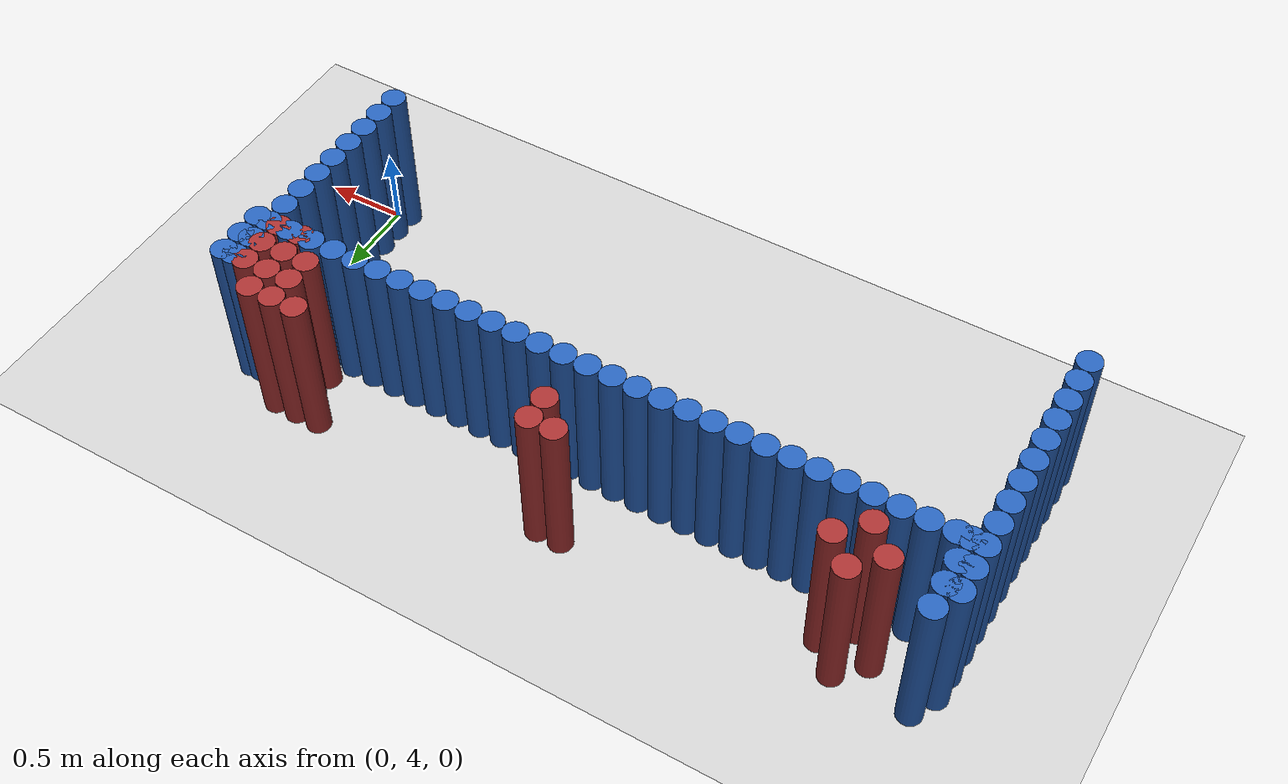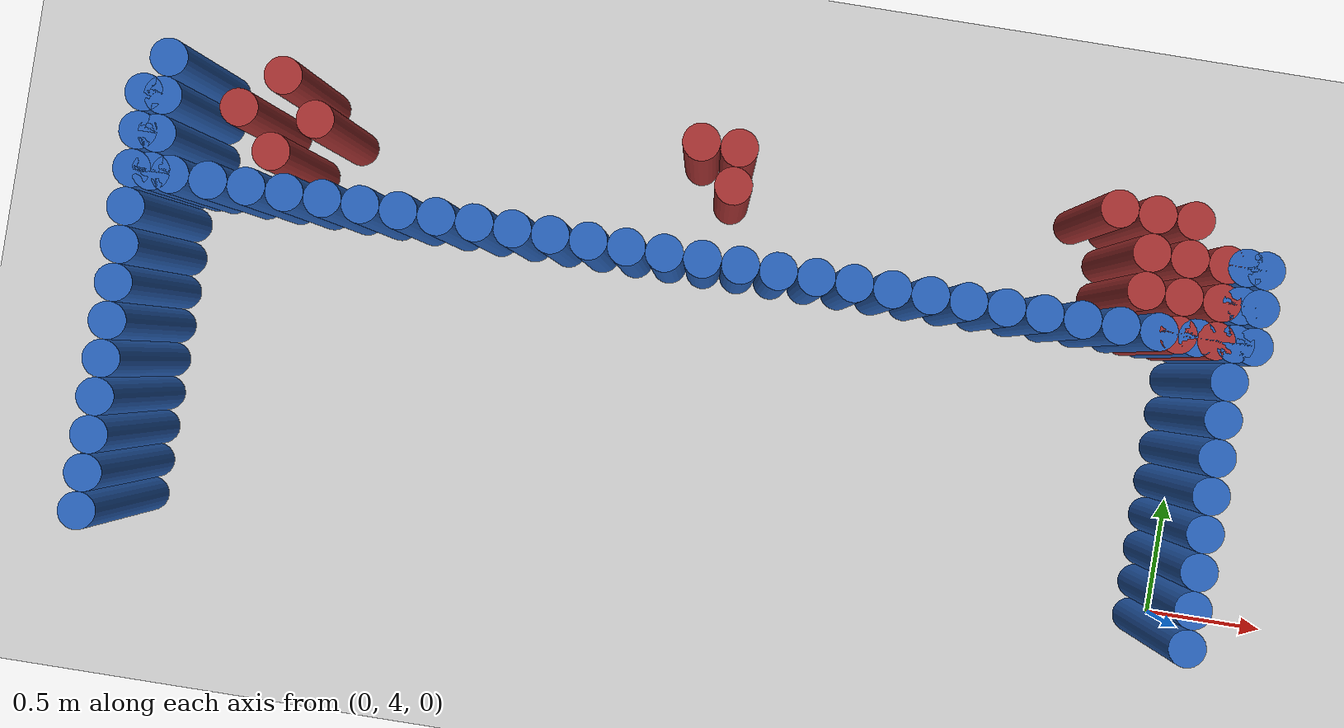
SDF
<sdf version="1.6">
 <world name="barn_world">
  <model name="ground_plane">
   <static>1</static>
   <link name="link">
    <collision name="collision">
     <geometry><plane><normal>0 0 1</normal><size>100 100</size></plane></geometry>
    </collision>
    <visual name="visual">
     <geometry><plane><normal>0 0 1</normal><size>100 100</size></plane></geometry>
     <material>
      <script><uri>file://media/materials/scripts/gazebo.material</uri><name>Gazebo/Grey</name></script>
     </material>
    </visual>
   </link>
  </model>
  <model name="unit_cylinder_79">
   <static>1</static>
   <pose>-4.4250 3.8250 0.5 0 0 0</pose>
   <link name="link">
    <collision name="collision">
     <geometry><cylinder><radius>0.075</radius><length>1</length></cylinder></geometry>
    </collision>
    <visual name="visual">
     <geometry><cylinder><radius>0.075</radius><length>1</length></cylinder></geometry>
     <material><ambient>0.152 0.379 0.72 1</ambient><diffuse>0.152 0.379 0.72 1</diffuse></material>
    </visual>
   </link>
  </model>
  <model name="unit_cylinder_80">
   <static>1</static>
   <pose>-0.0750 3.9750 0.5 0 0 0</pose>
   <link name="link">
    <collision name="collision">
     <geometry><cylinder><radius>0.075</radius><length>1</length></cylinder></geometry>
    </collision>
    <visual name="visual">
     <geometry><cylinder><radius>0.075</radius><length>1</length></cylinder></geometry>
     <material><ambient>0.152 0.379 0.72 1</ambient><diffuse>0.152 0.379 0.72 1</diffuse></material>
    </visual>
   </link>
  </model>
  <model name="unit_cylinder_81">
   <static>1</static>
   <pose>-4.4250 3.9750 0.5 0 0 0</pose>
   <link name="link">
    <collision name="collision">
     <geometry><cylinder><radius>0.075</radius><length>1</length></cylinder></geometry>
    </collision>
    <visual name="visual">
     <geometry><cylinder><radius>0.075</radius><length>1</length></cylinder></geometry>
     <material><ambient>0.152 0.379 0.72 1</ambient><diffuse>0.152 0.379 0.72 1</diffuse></material>
    </visual>
   </link>
  </model>
  <model name="unit_cylinder_82">
   <static>1</static>
   <pose>-0.0750 4.1250 0.5 0 0 0</pose>
   <link name="link">
    <collision name="collision">
     <geometry><cylinder><radius>0.075</radius><length>1</length></cylinder></geometry>
    </collision>
    <visual name="visual">
     <geometry><cylinder><radius>0.075</radius><length>1</length></cylinder></geometry>
     <material><ambient>0.152 0.379 0.72 1</ambient><diffuse>0.152 0.379 0.72 1</diffuse></material>
    </visual>
   </link>
  </model>
  <model name="unit_cylinder_83">
   <static>1</static>
   <pose>-4.4250 4.1250 0.5 0 0 0</pose>
   <link name="link">
    <collision name="collision">
     <geometry><cylinder><radius>0.075</radius><length>1</length></cylinder></geometry>
    </collision>
    <visual name="visual">
     <geometry><cylinder><radius>0.075</radius><length>1</length></cylinder></geometry>
     <material><ambient>0.152 0.379 0.72 1</ambient><diffuse>0.152 0.379 0.72 1</diffuse></material>
    </visual>
   </link>
  </model>
  <model name="unit_cylinder_84">
   <static>1</static>
   <pose>-0.0750 4.2750 0.5 0 0 0</pose>
   <link name="link">
    <collision name="collision">
     <geometry><cylinder><radius>0.075</radius><length>1</length></cylinder></geometry>
    </collision>
    <visual name="visual">
     <geometry><cylinder><radius>0.075</radius><length>1</length></cylinder></geometry>
     <material><ambient>0.152 0.379 0.72 1</ambient><diffuse>0.152 0.379 0.72 1</diffuse></material>
    </visual>
   </link>
  </model>
  <model name="unit_cylinder_85">
   <static>1</static>
   <pose>-4.4250 4.2750 0.5 0 0 0</pose>
   <link name="link">
    <collision name="collision">
     <geometry><cylinder><radius>0.075</radius><length>1</length></cylinder></geometry>
    </collision>
    <visual name="visual">
     <geometry><cylinder><radius>0.075</radius><length>1</length></cylinder></geometry>
     <material><ambient>0.152 0.379 0.72 1</ambient><diffuse>0.152 0.379 0.72 1</diffuse></material>
    </visual>
   </link>
  </model>
  <model name="unit_cylinder_86">
   <static>1</static>
   <pose>-0.0750 4.4250 0.5 0 0 0</pose>
   <link name="link">
    <collision name="collision">
     <geometry><cylinder><radius>0.075</radius><length>1</length></cylinder></geometry>
    </collision>
    <visual name="visual">
     <geometry><cylinder><radius>0.075</radius><length>1</length></cylinder></geometry>
     <material><ambient>0.152 0.379 0.72 1</ambient><diffuse>0.152 0.379 0.72 1</diffuse></material>
    </visual>
   </link>
  </model>
  <model name="unit_cylinder_87">
   <static>1</static>
   <pose>-4.4250 4.4250 0.5 0 0 0</pose>
   <link name="link">
    <collision name="collision">
     <geometry><cylinder><radius>0.075</radius><length>1</length></cylinder></geometry>
    </collision>
    <visual name="visual">
     <geometry><cylinder><radius>0.075</radius><length>1</length></cylinder></geometry>
     <material><ambient>0.152 0.379 0.72 1</ambient><diffuse>0.152 0.379 0.72 1</diffuse></material>
    </visual>
   </link>
  </model>
  <model name="unit_cylinder_88">
   <static>1</static>
   <pose>-0.0750 4.5750 0.5 0 0 0</pose>
   <link name="link">
    <collision name="collision">
     <geometry><cylinder><radius>0.075</radius><length>1</length></cylinder></geometry>
    </collision>
    <visual name="visual">
     <geometry><cylinder><radius>0.075</radius><length>1</length></cylinder></geometry>
     <material><ambient>0.152 0.379 0.72 1</ambient><diffuse>0.152 0.379 0.72 1</diffuse></material>
    </visual>
   </link>
  </model>
  <model name="unit_cylinder_89">
   <static>1</static>
   <pose>-4.4250 4.5750 0.5 0 0 0</pose>
   <link name="link">
    <collision name="collision">
     <geometry><cylinder><radius>0.075</radius><length>1</length></cylinder></geometry>
    </collision>
    <visual name="visual">
     <geometry><cylinder><radius>0.075</radius><length>1</length></cylinder></geometry>
     <material><ambient>0.152 0.379 0.72 1</ambient><diffuse>0.152 0.379 0.72 1</diffuse></material>
    </visual>
   </link>
  </model>
  <model name="unit_cylinder_90">
   <static>1</static>
   <pose>-0.0750 4.7250 0.5 0 0 0</pose>
   <link name="link">
    <collision name="collision">
     <geometry><cylinder><radius>0.075</radius><length>1</length></cylinder></geometry>
    </collision>
    <visual name="visual">
     <geometry><cylinder><radius>0.075</radius><length>1</length></cylinder></geometry>
     <material><ambient>0.152 0.379 0.72 1</ambient><diffuse>0.152 0.379 0.72 1</diffuse></material>
    </visual>
   </link>
  </model>
  <model name="unit_cylinder_91">
   <static>1</static>
   <pose>-4.4250 4.7250 0.5 0 0 0</pose>
   <link name="link">
    <collision name="collision">
     <geometry><cylinder><radius>0.075</radius><length>1</length></cylinder></geometry>
    </collision>
    <visual name="visual">
     <geometry><cylinder><radius>0.075</radius><length>1</length></cylinder></geometry>
     <material><ambient>0.152 0.379 0.72 1</ambient><diffuse>0.152 0.379 0.72 1</diffuse></material>
    </visual>
   </link>
  </model>
  <model name="unit_cylinder_92">
   <static>1</static>
   <pose>-0.0750 4.8750 0.5 0 0 0</pose>
   <link name="link">
    <collision name="collision">
     <geometry><cylinder><radius>0.075</radius><length>1</length></cylinder></geometry>
    </collision>
    <visual name="visual">
     <geometry><cylinder><radius>0.075</radius><length>1</length></cylinder></geometry>
     <material><ambient>0.152 0.379 0.72 1</ambient><diffuse>0.152 0.379 0.72 1</diffuse></material>
    </visual>
   </link>
  </model>
  <model name="unit_cylinder_93">
   <static>1</static>
   <pose>-4.4250 4.8750 0.5 0 0 0</pose>
   <link name="link">
    <collision name="collision">
     <geometry><cylinder><radius>0.075</radius><length>1</length></cylinder></geometry>
    </collision>
    <visual name="visual">
     <geometry><cylinder><radius>0.075</radius><length>1</length></cylinder></geometry>
     <material><ambient>0.152 0.379 0.72 1</ambient><diffuse>0.152 0.379 0.72 1</diffuse></material>
    </visual>
   </link>
  </model>
  <model name="unit_cylinder_94">
   <static>1</static>
   <pose>-0.0750 5.0250 0.5 0 0 0</pose>
   <link name="link">
    <collision name="collision">
     <geometry><cylinder><radius>0.075</radius><length>1</length></cylinder></geometry>
    </collision>
    <visual name="visual">
     <geometry><cylinder><radius>0.075</radius><length>1</length></cylinder></geometry>
     <material><ambient>0.152 0.379 0.72 1</ambient><diffuse>0.152 0.379 0.72 1</diffuse></material>
    </visual>
   </link>
  </model>
  <model name="unit_cylinder_95">
   <static>1</static>
   <pose>-4.4250 5.0250 0.5 0 0 0</pose>
   <link name="link">
    <collision name="collision">
     <geometry><cylinder><radius>0.075</radius><length>1</length></cylinder></geometry>
    </collision>
    <visual name="visual">
     <geometry><cylinder><radius>0.075</radius><length>1</length></cylinder></geometry>
     <material><ambient>0.152 0.379 0.72 1</ambient><diffuse>0.152 0.379 0.72 1</diffuse></material>
    </visual>
   </link>
  </model>
  <model name="unit_cylinder_96">
   <static>1</static>
   <pose>-0.0750 5.1750 0.5 0 0 0</pose>
   <link name="link">
    <collision name="collision">
     <geometry><cylinder><radius>0.075</radius><length>1</length></cylinder></geometry>
    </collision>
    <visual name="visual">
     <geometry><cylinder><radius>0.075</radius><length>1</length></cylinder></geometry>
     <material><ambient>0.152 0.379 0.72 1</ambient><diffuse>0.152 0.379 0.72 1</diffuse></material>
    </visual>
   </link>
  </model>
  <model name="unit_cylinder_97">
   <static>1</static>
   <pose>-0.2250 5.1750 0.5 0 0 0</pose>
   <link name="link">
    <collision name="collision">
     <geometry><cylinder><radius>0.075</radius><length>1</length></cylinder></geometry>
    </collision>
    <visual name="visual">
     <geometry><cylinder><radius>0.075</radius><length>1</length></cylinder></geometry>
     <material><ambient>0.152 0.379 0.72 1</ambient><diffuse>0.152 0.379 0.72 1</diffuse></material>
    </visual>
   </link>
  </model>
  <model name="unit_cylinder_98">
   <static>1</static>
   <pose>-0.3750 5.1750 0.5 0 0 0</pose>
   <link name="link">
    <collision name="collision">
     <geometry><cylinder><radius>0.075</radius><length>1</length></cylinder></geometry>
    </collision>
    <visual name="visual">
     <geometry><cylinder><radius>0.075</radius><length>1</length></cylinder></geometry>
     <material><ambient>0.152 0.379 0.72 1</ambient><diffuse>0.152 0.379 0.72 1</diffuse></material>
    </visual>
   </link>
  </model>
  <model name="unit_cylinder_99">
   <static>1</static>
   <pose>-0.5250 5.1750 0.5 0 0 0</pose>
   <link name="link">
    <collision name="collision">
     <geometry><cylinder><radius>0.075</radius><length>1</length></cylinder></geometry>
    </collision>
    <visual name="visual">
     <geometry><cylinder><radius>0.075</radius><length>1</length></cylinder></geometry>
     <material><ambient>0.152 0.379 0.72 1</ambient><diffuse>0.152 0.379 0.72 1</diffuse></material>
    </visual>
   </link>
  </model>
  <model name="unit_cylinder_100">
   <static>1</static>
   <pose>-0.6750 5.1750 0.5 0 0 0</pose>
   <link name="link">
    <collision name="collision">
     <geometry><cylinder><radius>0.075</radius><length>1</length></cylinder></geometry>
    </collision>
    <visual name="visual">
     <geometry><cylinder><radius>0.075</radius><length>1</length></cylinder></geometry>
     <material><ambient>0.152 0.379 0.72 1</ambient><diffuse>0.152 0.379 0.72 1</diffuse></material>
    </visual>
   </link>
  </model>
  <model name="unit_cylinder_101">
   <static>1</static>
   <pose>-0.8250 5.1750 0.5 0 0 0</pose>
   <link name="link">
    <collision name="collision">
     <geometry><cylinder><radius>0.075</radius><length>1</length></cylinder></geometry>
    </collision>
    <visual name="visual">
     <geometry><cylinder><radius>0.075</radius><length>1</length></cylinder></geometry>
     <material><ambient>0.152 0.379 0.72 1</ambient><diffuse>0.152 0.379 0.72 1</diffuse></material>
    </visual>
   </link>
  </model>
  <model name="unit_cylinder_102">
   <static>1</static>
   <pose>-0.9750 5.1750 0.5 0 0 0</pose>
   <link name="link">
    <collision name="collision">
     <geometry><cylinder><radius>0.075</radius><length>1</length></cylinder></geometry>
    </collision>
    <visual name="visual">
     <geometry><cylinder><radius>0.075</radius><length>1</length></cylinder></geometry>
     <material><ambient>0.152 0.379 0.72 1</ambient><diffuse>0.152 0.379 0.72 1</diffuse></material>
    </visual>
   </link>
  </model>
  <model name="unit_cylinder_103">
   <static>1</static>
   <pose>-1.1250 5.1750 0.5 0 0 0</pose>
   <link name="link">
    <collision name="collision">
     <geometry><cylinder><radius>0.075</radius><length>1</length></cylinder></geometry>
    </collision>
    <visual name="visual">
     <geometry><cylinder><radius>0.075</radius><length>1</length></cylinder></geometry>
     <material><ambient>0.152 0.379 0.72 1</ambient><diffuse>0.152 0.379 0.72 1</diffuse></material>
    </visual>
   </link>
  </model>
  <model name="unit_cylinder_104">
   <static>1</static>
   <pose>-1.2750 5.1750 0.5 0 0 0</pose>
   <link name="link">
    <collision name="collision">
     <geometry><cylinder><radius>0.075</radius><length>1</length></cylinder></geometry>
    </collision>
    <visual name="visual">
     <geometry><cylinder><radius>0.075</radius><length>1</length></cylinder></geometry>
     <material><ambient>0.152 0.379 0.72 1</ambient><diffuse>0.152 0.379 0.72 1</diffuse></material>
    </visual>
   </link>
  </model>
  <model name="unit_cylinder_105">
   <static>1</static>
   <pose>-1.4250 5.1750 0.5 0 0 0</pose>
   <link name="link">
    <collision name="collision">
     <geometry><cylinder><radius>0.075</radius><length>1</length></cylinder></geometry>
    </collision>
    <visual name="visual">
     <geometry><cylinder><radius>0.075</radius><length>1</length></cylinder></geometry>
     <material><ambient>0.152 0.379 0.72 1</ambient><diffuse>0.152 0.379 0.72 1</diffuse></material>
    </visual>
   </link>
  </model>
  <model name="unit_cylinder_106">
   <static>1</static>
   <pose>-1.5750 5.1750 0.5 0 0 0</pose>
   <link name="link">
    <collision name="collision">
     <geometry><cylinder><radius>0.075</radius><length>1</length></cylinder></geometry>
    </collision>
    <visual name="visual">
     <geometry><cylinder><radius>0.075</radius><length>1</length></cylinder></geometry>
     <material><ambient>0.152 0.379 0.72 1</ambient><diffuse>0.152 0.379 0.72 1</diffuse></material>
    </visual>
   </link>
  </model>
  <model name="unit_cylinder_107">
   <static>1</static>
   <pose>-1.7250 5.1750 0.5 0 0 0</pose>
   <link name="link">
    <collision name="collision">
     <geometry><cylinder><radius>0.075</radius><length>1</length></cylinder></geometry>
    </collision>
    <visual name="visual">
     <geometry><cylinder><radius>0.075</radius><length>1</length></cylinder></geometry>
     <material><ambient>0.152 0.379 0.72 1</ambient><diffuse>0.152 0.379 0.72 1</diffuse></material>
    </visual>
   </link>
  </model>
  <model name="unit_cylinder_108">
   <static>1</static>
   <pose>-1.8750 5.1750 0.5 0 0 0</pose>
   <link name="link">
    <collision name="collision">
     <geometry><cylinder><radius>0.075</radius><length>1</length></cylinder></geometry>
    </collision>
    <visual name="visual">
     <geometry><cylinder><radius>0.075</radius><length>1</length></cylinder></geometry>
     <material><ambient>0.152 0.379 0.72 1</ambient><diffuse>0.152 0.379 0.72 1</diffuse></material>
    </visual>
   </link>
  </model>
  <model name="unit_cylinder_109">
   <static>1</static>
   <pose>-2.0250 5.1750 0.5 0 0 0</pose>
   <link name="link">
    <collision name="collision">
     <geometry><cylinder><radius>0.075</radius><length>1</length></cylinder></geometry>
    </collision>
    <visual name="visual">
     <geometry><cylinder><radius>0.075</radius><length>1</length></cylinder></geometry>
     <material><ambient>0.152 0.379 0.72 1</ambient><diffuse>0.152 0.379 0.72 1</diffuse></material>
    </visual>
   </link>
  </model>
  <model name="unit_cylinder_110">
   <static>1</static>
   <pose>-2.1750 5.1750 0.5 0 0 0</pose>
   <link name="link">
    <collision name="collision">
     <geometry><cylinder><radius>0.075</radius><length>1</length></cylinder></geometry>
    </collision>
    <visual name="visual">
     <geometry><cylinder><radius>0.075</radius><length>1</length></cylinder></geometry>
     <material><ambient>0.152 0.379 0.72 1</ambient><diffuse>0.152 0.379 0.72 1</diffuse></material>
    </visual>
   </link>
  </model>
  <model name="unit_cylinder_111">
   <static>1</static>
   <pose>-2.3250 5.1750 0.5 0 0 0</pose>
   <link name="link">
    <collision name="collision">
     <geometry><cylinder><radius>0.075</radius><length>1</length></cylinder></geometry>
    </collision>
    <visual name="visual">
     <geometry><cylinder><radius>0.075</radius><length>1</length></cylinder></geometry>
     <material><ambient>0.152 0.379 0.72 1</ambient><diffuse>0.152 0.379 0.72 1</diffuse></material>
    </visual>
   </link>
  </model>
  <model name="unit_cylinder_112">
   <static>1</static>
   <pose>-2.4750 5.1750 0.5 0 0 0</pose>
   <link name="link">
    <collision name="collision">
     <geometry><cylinder><radius>0.075</radius><length>1</length></cylinder></geometry>
    </collision>
    <visual name="visual">
     <geometry><cylinder><radius>0.075</radius><length>1</length></cylinder></geometry>
     <material><ambient>0.152 0.379 0.72 1</ambient><diffuse>0.152 0.379 0.72 1</diffuse></material>
    </visual>
   </link>
  </model>
  <model name="unit_cylinder_113">
   <static>1</static>
   <pose>-2.6250 5.1750 0.5 0 0 0</pose>
   <link name="link">
    <collision name="collision">
     <geometry><cylinder><radius>0.075</radius><length>1</length></cylinder></geometry>
    </collision>
    <visual name="visual">
     <geometry><cylinder><radius>0.075</radius><length>1</length></cylinder></geometry>
     <material><ambient>0.152 0.379 0.72 1</ambient><diffuse>0.152 0.379 0.72 1</diffuse></material>
    </visual>
   </link>
  </model>
  <model name="unit_cylinder_114">
   <static>1</static>
   <pose>-2.7750 5.1750 0.5 0 0 0</pose>
   <link name="link">
    <collision name="collision">
     <geometry><cylinder><radius>0.075</radius><length>1</length></cylinder></geometry>
    </collision>
    <visual name="visual">
     <geometry><cylinder><radius>0.075</radius><length>1</length></cylinder></geometry>
     <material><ambient>0.152 0.379 0.72 1</ambient><diffuse>0.152 0.379 0.72 1</diffuse></material>
    </visual>
   </link>
  </model>
  <model name="unit_cylinder_115">
   <static>1</static>
   <pose>-2.9250 5.1750 0.5 0 0 0</pose>
   <link name="link">
    <collision name="collision">
     <geometry><cylinder><radius>0.075</radius><length>1</length></cylinder></geometry>
    </collision>
    <visual name="visual">
     <geometry><cylinder><radius>0.075</radius><length>1</length></cylinder></geometry>
     <material><ambient>0.152 0.379 0.72 1</ambient><diffuse>0.152 0.379 0.72 1</diffuse></material>
    </visual>
   </link>
  </model>
  <model name="unit_cylinder_116">
   <static>1</static>
   <pose>-3.0750 5.1750 0.5 0 0 0</pose>
   <link name="link">
    <collision name="collision">
     <geometry><cylinder><radius>0.075</radius><length>1</length></cylinder></geometry>
    </collision>
    <visual name="visual">
     <geometry><cylinder><radius>0.075</radius><length>1</length></cylinder></geometry>
     <material><ambient>0.152 0.379 0.72 1</ambient><diffuse>0.152 0.379 0.72 1</diffuse></material>
    </visual>
   </link>
  </model>
  <model name="unit_cylinder_117">
   <static>1</static>
   <pose>-3.2250 5.1750 0.5 0 0 0</pose>
   <link name="link">
    <collision name="collision">
     <geometry><cylinder><radius>0.075</radius><length>1</length></cylinder></geometry>
    </collision>
    <visual name="visual">
     <geometry><cylinder><radius>0.075</radius><length>1</length></cylinder></geometry>
     <material><ambient>0.152 0.379 0.72 1</ambient><diffuse>0.152 0.379 0.72 1</diffuse></material>
    </visual>
   </link>
  </model>
  <model name="unit_cylinder_118">
   <static>1</static>
   <pose>-3.3750 5.1750 0.5 0 0 0</pose>
   <link name="link">
    <collision name="collision">
     <geometry><cylinder><radius>0.075</radius><length>1</length></cylinder></geometry>
    </collision>
    <visual name="visual">
     <geometry><cylinder><radius>0.075</radius><length>1</length></cylinder></geometry>
     <material><ambient>0.152 0.379 0.72 1</ambient><diffuse>0.152 0.379 0.72 1</diffuse></material>
    </visual>
   </link>
  </model>
  <model name="unit_cylinder_119">
   <static>1</static>
   <pose>-3.5250 5.1750 0.5 0 0 0</pose>
   <link name="link">
    <collision name="collision">
     <geometry><cylinder><radius>0.075</radius><length>1</length></cylinder></geometry>
    </collision>
    <visual name="visual">
     <geometry><cylinder><radius>0.075</radius><length>1</length></cylinder></geometry>
     <material><ambient>0.152 0.379 0.72 1</ambient><diffuse>0.152 0.379 0.72 1</diffuse></material>
    </visual>
   </link>
  </model>
  <model name="unit_cylinder_120">
   <static>1</static>
   <pose>-3.6750 5.1750 0.5 0 0 0</pose>
   <link name="link">
    <collision name="collision">
     <geometry><cylinder><radius>0.075</radius><length>1</length></cylinder></geometry>
    </collision>
    <visual name="visual">
     <geometry><cylinder><radius>0.075</radius><length>1</length></cylinder></geometry>
     <material><ambient>0.152 0.379 0.72 1</ambient><diffuse>0.152 0.379 0.72 1</diffuse></material>
    </visual>
   </link>
  </model>
  <model name="unit_cylinder_121">
   <static>1</static>
   <pose>-3.8250 5.1750 0.5 0 0 0</pose>
   <link name="link">
    <collision name="collision">
     <geometry><cylinder><radius>0.075</radius><length>1</length></cylinder></geometry>
    </collision>
    <visual name="visual">
     <geometry><cylinder><radius>0.075</radius><length>1</length></cylinder></geometry>
     <material><ambient>0.152 0.379 0.72 1</ambient><diffuse>0.152 0.379 0.72 1</diffuse></material>
    </visual>
   </link>
  </model>
  <model name="unit_cylinder_122">
   <static>1</static>
   <pose>-3.9750 5.1750 0.5 0 0 0</pose>
   <link name="link">
    <collision name="collision">
     <geometry><cylinder><radius>0.075</radius><length>1</length></cylinder></geometry>
    </collision>
    <visual name="visual">
     <geometry><cylinder><radius>0.075</radius><length>1</length></cylinder></geometry>
     <material><ambient>0.152 0.379 0.72 1</ambient><diffuse>0.152 0.379 0.72 1</diffuse></material>
    </visual>
   </link>
  </model>
  <model name="unit_cylinder_123">
   <static>1</static>
   <pose>-4.1250 5.1750 0.5 0 0 0</pose>
   <link name="link">
    <collision name="collision">
     <geometry><cylinder><radius>0.075</radius><length>1</length></cylinder></geometry>
    </collision>
    <visual name="visual">
     <geometry><cylinder><radius>0.075</radius><length>1</length></cylinder></geometry>
     <material><ambient>0.152 0.379 0.72 1</ambient><diffuse>0.152 0.379 0.72 1</diffuse></material>
    </visual>
   </link>
  </model>
  <model name="unit_cylinder_124">
   <static>1</static>
   <pose>-4.2750 5.1750 0.5 0 0 0</pose>
   <link name="link">
    <collision name="collision">
     <geometry><cylinder><radius>0.075</radius><length>1</length></cylinder></geometry>
    </collision>
    <visual name="visual">
     <geometry><cylinder><radius>0.075</radius><length>1</length></cylinder></geometry>
     <material><ambient>0.152 0.379 0.72 1</ambient><diffuse>0.152 0.379 0.72 1</diffuse></material>
    </visual>
   </link>
  </model>
  <model name="unit_cylinder_125">
   <static>1</static>
   <pose>-4.4250 5.1750 0.5 0 0 0</pose>
   <link name="link">
    <collision name="collision">
     <geometry><cylinder><radius>0.075</radius><length>1</length></cylinder></geometry>
    </collision>
    <visual name="visual">
     <geometry><cylinder><radius>0.075</radius><length>1</length></cylinder></geometry>
     <material><ambient>0.152 0.379 0.72 1</ambient><diffuse>0.152 0.379 0.72 1</diffuse></material>
    </visual>
   </link>
  </model>
  <model name="unit_cylinder_126">
   <static>1</static>
   <pose>-4.3500 5.1750 0.5 0 0 0</pose>
   <link name="link">
    <collision name="collision">
     <geometry><cylinder><radius>0.075</radius><length>1</length></cylinder></geometry>
    </collision>
    <visual name="visual">
     <geometry><cylinder><radius>0.075</radius><length>1</length></cylinder></geometry>
     <material><ambient>0.152 0.379 0.72 1</ambient><diffuse>0.152 0.379 0.72 1</diffuse></material>
    </visual>
   </link>
  </model>
  <model name="unit_cylinder_127">
   <static>1</static>
   <pose>-4.3500 5.3250 0.5 0 0 0</pose>
   <link name="link">
    <collision name="collision">
     <geometry><cylinder><radius>0.075</radius><length>1</length></cylinder></geometry>
    </collision>
    <visual name="visual">
     <geometry><cylinder><radius>0.075</radius><length>1</length></cylinder></geometry>
     <material><ambient>0.152 0.379 0.72 1</ambient><diffuse>0.152 0.379 0.72 1</diffuse></material>
    </visual>
   </link>
  </model>
  <model name="unit_cylinder_128">
   <static>1</static>
   <pose>-4.3500 5.4750 0.5 0 0 0</pose>
   <link name="link">
    <collision name="collision">
     <geometry><cylinder><radius>0.075</radius><length>1</length></cylinder></geometry>
    </collision>
    <visual name="visual">
     <geometry><cylinder><radius>0.075</radius><length>1</length></cylinder></geometry>
     <material><ambient>0.152 0.379 0.72 1</ambient><diffuse>0.152 0.379 0.72 1</diffuse></material>
    </visual>
   </link>
  </model>
  <model name="unit_cylinder_129">
   <static>1</static>
   <pose>-4.3500 5.6250 0.5 0 0 0</pose>
   <link name="link">
    <collision name="collision">
     <geometry><cylinder><radius>0.075</radius><length>1</length></cylinder></geometry>
    </collision>
    <visual name="visual">
     <geometry><cylinder><radius>0.075</radius><length>1</length></cylinder></geometry>
     <material><ambient>0.152 0.379 0.72 1</ambient><diffuse>0.152 0.379 0.72 1</diffuse></material>
    </visual>
   </link>
  </model>
  <model name="unit_cylinder_169">
   <static>1</static>
   <pose>-4.0500 5.4750 0.5 0 0 0</pose>
   <link name="link">
    <collision name="collision">
     <geometry><cylinder><radius>0.075</radius><length>1</length></cylinder></geometry>
    </collision>
    <visual name="visual">
     <geometry><cylinder><radius>0.075</radius><length>1</length></cylinder></geometry>
     <material><ambient>0.648 0.192 0.192 1</ambient><diffuse>0.648 0.192 0.192 1</diffuse></material>
    </visual>
   </link>
  </model>
  <model name="unit_cylinder_176">
   <static>1</static>
   <pose>-3.9000 5.3250 0.5 0 0 0</pose>
   <link name="link">
    <collision name="collision">
     <geometry><cylinder><radius>0.075</radius><length>1</length></cylinder></geometry>
    </collision>
    <visual name="visual">
     <geometry><cylinder><radius>0.075</radius><length>1</length></cylinder></geometry>
     <material><ambient>0.648 0.192 0.192 1</ambient><diffuse>0.648 0.192 0.192 1</diffuse></material>
    </visual>
   </link>
  </model>
  <model name="unit_cylinder_177">
   <static>1</static>
   <pose>-3.9000 5.6250 0.5 0 0 0</pose>
   <link name="link">
    <collision name="collision">
     <geometry><cylinder><radius>0.075</radius><length>1</length></cylinder></geometry>
    </collision>
    <visual name="visual">
     <geometry><cylinder><radius>0.075</radius><length>1</length></cylinder></geometry>
     <material><ambient>0.648 0.192 0.192 1</ambient><diffuse>0.648 0.192 0.192 1</diffuse></material>
    </visual>
   </link>
  </model>
  <model name="unit_cylinder_183">
   <static>1</static>
   <pose>-3.7500 5.4750 0.5 0 0 0</pose>
   <link name="link">
    <collision name="collision">
     <geometry><cylinder><radius>0.075</radius><length>1</length></cylinder></geometry>
    </collision>
    <visual name="visual">
     <geometry><cylinder><radius>0.075</radius><length>1</length></cylinder></geometry>
     <material><ambient>0.648 0.192 0.192 1</ambient><diffuse>0.648 0.192 0.192 1</diffuse></material>
    </visual>
   </link>
  </model>
  <model name="unit_cylinder_203">
   <static>1</static>
   <pose>-2.2500 5.6250 0.5 0 0 0</pose>
   <link name="link">
    <collision name="collision">
     <geometry><cylinder><radius>0.075</radius><length>1</length></cylinder></geometry>
    </collision>
    <visual name="visual">
     <geometry><cylinder><radius>0.075</radius><length>1</length></cylinder></geometry>
     <material><ambient>0.648 0.192 0.192 1</ambient><diffuse>0.648 0.192 0.192 1</diffuse></material>
    </visual>
   </link>
  </model>
  <model name="unit_cylinder_207">
   <static>1</static>
   <pose>-2.1000 5.4750 0.5 0 0 0</pose>
   <link name="link">
    <collision name="collision">
     <geometry><cylinder><radius>0.075</radius><length>1</length></cylinder></geometry>
    </collision>
    <visual name="visual">
     <geometry><cylinder><radius>0.075</radius><length>1</length></cylinder></geometry>
     <material><ambient>0.648 0.192 0.192 1</ambient><diffuse>0.648 0.192 0.192 1</diffuse></material>
    </visual>
   </link>
  </model>
  <model name="unit_cylinder_208">
   <static>1</static>
   <pose>-2.1000 5.6250 0.5 0 0 0</pose>
   <link name="link">
    <collision name="collision">
     <geometry><cylinder><radius>0.075</radius><length>1</length></cylinder></geometry>
    </collision>
    <visual name="visual">
     <geometry><cylinder><radius>0.075</radius><length>1</length></cylinder></geometry>
     <material><ambient>0.648 0.192 0.192 1</ambient><diffuse>0.648 0.192 0.192 1</diffuse></material>
    </visual>
   </link>
  </model>
  <model name="unit_cylinder_226">
   <static>1</static>
   <pose>-0.6000 5.6250 0.5 0 0 0</pose>
   <link name="link">
    <collision name="collision">
     <geometry><cylinder><radius>0.075</radius><length>1</length></cylinder></geometry>
    </collision>
    <visual name="visual">
     <geometry><cylinder><radius>0.075</radius><length>1</length></cylinder></geometry>
     <material><ambient>0.648 0.192 0.192 1</ambient><diffuse>0.648 0.192 0.192 1</diffuse></material>
    </visual>
   </link>
  </model>
  <model name="unit_cylinder_235">
   <static>1</static>
   <pose>-0.4500 5.3250 0.5 0 0 0</pose>
   <link name="link">
    <collision name="collision">
     <geometry><cylinder><radius>0.075</radius><length>1</length></cylinder></geometry>
    </collision>
    <visual name="visual">
     <geometry><cylinder><radius>0.075</radius><length>1</length></cylinder></geometry>
     <material><ambient>0.648 0.192 0.192 1</ambient><diffuse>0.648 0.192 0.192 1</diffuse></material>
    </visual>
   </link>
  </model>
  <model name="unit_cylinder_236">
   <static>1</static>
   <pose>-0.4500 5.4750 0.5 0 0 0</pose>
   <link name="link">
    <collision name="collision">
     <geometry><cylinder><radius>0.075</radius><length>1</length></cylinder></geometry>
    </collision>
    <visual name="visual">
     <geometry><cylinder><radius>0.075</radius><length>1</length></cylinder></geometry>
     <material><ambient>0.648 0.192 0.192 1</ambient><diffuse>0.648 0.192 0.192 1</diffuse></material>
    </visual>
   </link>
  </model>
  <model name="unit_cylinder_237">
   <static>1</static>
   <pose>-0.4500 5.6250 0.5 0 0 0</pose>
   <link name="link">
    <collision name="collision">
     <geometry><cylinder><radius>0.075</radius><length>1</length></cylinder></geometry>
    </collision>
    <visual name="visual">
     <geometry><cylinder><radius>0.075</radius><length>1</length></cylinder></geometry>
     <material><ambient>0.648 0.192 0.192 1</ambient><diffuse>0.648 0.192 0.192 1</diffuse></material>
    </visual>
   </link>
  </model>
  <model name="unit_cylinder_242">
   <static>1</static>
   <pose>-0.3000 5.1750 0.5 0 0 0</pose>
   <link name="link">
    <collision name="collision">
     <geometry><cylinder><radius>0.075</radius><length>1</length></cylinder></geometry>
    </collision>
    <visual name="visual">
     <geometry><cylinder><radius>0.075</radius><length>1</length></cylinder></geometry>
     <material><ambient>0.648 0.192 0.192 1</ambient><diffuse>0.648 0.192 0.192 1</diffuse></material>
    </visual>
   </link>
  </model>
  <model name="unit_cylinder_243">
   <static>1</static>
   <pose>-0.3000 5.3250 0.5 0 0 0</pose>
   <link name="link">
    <collision name="collision">
     <geometry><cylinder><radius>0.075</radius><length>1</length></cylinder></geometry>
    </collision>
    <visual name="visual">
     <geometry><cylinder><radius>0.075</radius><length>1</length></cylinder></geometry>
     <material><ambient>0.648 0.192 0.192 1</ambient><diffuse>0.648 0.192 0.192 1</diffuse></material>
    </visual>
   </link>
  </model>
  <model name="unit_cylinder_244">
   <static>1</static>
   <pose>-0.3000 5.4750 0.5 0 0 0</pose>
   <link name="link">
    <collision name="collision">
     <geometry><cylinder><radius>0.075</radius><length>1</length></cylinder></geometry>
    </collision>
    <visual name="visual">
     <geometry><cylinder><radius>0.075</radius><length>1</length></cylinder></geometry>
     <material><ambient>0.648 0.192 0.192 1</ambient><diffuse>0.648 0.192 0.192 1</diffuse></material>
    </visual>
   </link>
  </model>
  <model name="unit_cylinder_245">
   <static>1</static>
   <pose>-0.3000 5.6250 0.5 0 0 0</pose>
   <link name="link">
    <collision name="collision">
     <geometry><cylinder><radius>0.075</radius><length>1</length></cylinder></geometry>
    </collision>
    <visual name="visual">
     <geometry><cylinder><radius>0.075</radius><length>1</length></cylinder></geometry>
     <material><ambient>0.648 0.192 0.192 1</ambient><diffuse>0.648 0.192 0.192 1</diffuse></material>
    </visual>
   </link>
  </model>
  <model name="unit_cylinder_252">
   <static>1</static>
   <pose>-0.1500 5.1750 0.5 0 0 0</pose>
   <link name="link">
    <collision name="collision">
     <geometry><cylinder><radius>0.075</radius><length>1</length></cylinder></geometry>
    </collision>
    <visual name="visual">
     <geometry><cylinder><radius>0.075</radius><length>1</length></cylinder></geometry>
     <material><ambient>0.648 0.192 0.192 1</ambient><diffuse>0.648 0.192 0.192 1</diffuse></material>
    </visual>
   </link>
  </model>
  <model name="unit_cylinder_253">
   <static>1</static>
   <pose>-0.1500 5.3250 0.5 0 0 0</pose>
   <link name="link">
    <collision name="collision">
     <geometry><cylinder><radius>0.075</radius><length>1</length></cylinder></geometry>
    </collision>
    <visual name="visual">
     <geometry><cylinder><radius>0.075</radius><length>1</length></cylinder></geometry>
     <material><ambient>0.648 0.192 0.192 1</ambient><diffuse>0.648 0.192 0.192 1</diffuse></material>
    </visual>
   </link>
  </model>
  <model name="unit_cylinder_254">
   <static>1</static>
   <pose>-0.1500 5.4750 0.5 0 0 0</pose>
   <link name="link">
    <collision name="collision">
     <geometry><cylinder><radius>0.075</radius><length>1</length></cylinder></geometry>
    </collision>
    <visual name="visual">
     <geometry><cylinder><radius>0.075</radius><length>1</length></cylinder></geometry>
     <material><ambient>0.648 0.192 0.192 1</ambient><diffuse>0.648 0.192 0.192 1</diffuse></material>
    </visual>
   </link>
  </model>
  <model name="unit_cylinder_274">
   <static>1</static>
   <pose>0.0000 5.1750 0.5 0 0 0</pose>
   <link name="link">
    <collision name="collision">
     <geometry><cylinder><radius>0.075</radius><length>1</length></cylinder></geometry>
    </collision>
    <visual name="visual">
     <geometry><cylinder><radius>0.075</radius><length>1</length></cylinder></geometry>
     <material><ambient>0.152 0.379 0.72 1</ambient><diffuse>0.152 0.379 0.72 1</diffuse></material>
    </visual>
   </link>
  </model>
  <model name="unit_cylinder_275">
   <static>1</static>
   <pose>0.0000 5.3250 0.5 0 0 0</pose>
   <link name="link">
    <collision name="collision">
     <geometry><cylinder><radius>0.075</radius><length>1</length></cylinder></geometry>
    </collision>
    <visual name="visual">
     <geometry><cylinder><radius>0.075</radius><length>1</length></cylinder></geometry>
     <material><ambient>0.152 0.379 0.72 1</ambient><diffuse>0.152 0.379 0.72 1</diffuse></material>
    </visual>
   </link>
  </model>
  <model name="unit_cylinder_276">
   <static>1</static>
   <pose>0.0000 5.4750 0.5 0 0 0</pose>
   <link name="link">
    <collision name="collision">
     <geometry><cylinder><radius>0.075</radius><length>1</length></cylinder></geometry>
    </collision>
    <visual name="visual">
     <geometry><cylinder><radius>0.075</radius><length>1</length></cylinder></geometry>
     <material><ambient>0.152 0.379 0.72 1</ambient><diffuse>0.152 0.379 0.72 1</diffuse></material>
    </visual>
   </link>
  </model>
  <model name="unit_cylinder_334">
   <static>1</static>
   <pose>-0.0750 5.1750 0.5 0 0 0</pose>
   <link name="link">
    <collision name="collision">
     <geometry><cylinder><radius>0.075</radius><length>1</length></cylinder></geometry>
    </collision>
    <visual name="visual">
     <geometry><cylinder><radius>0.075</radius><length>1</length></cylinder></geometry>
     <material><ambient>0.152 0.379 0.72 1</ambient><diffuse>0.152 0.379 0.72 1</diffuse></material>
    </visual>
   </link>
  </model>
  <model name="unit_cylinder_335">
   <static>1</static>
   <pose>-4.4250 5.1750 0.5 0 0 0</pose>
   <link name="link">
    <collision name="collision">
     <geometry><cylinder><radius>0.075</radius><length>1</length></cylinder></geometry>
    </collision>
    <visual name="visual">
     <geometry><cylinder><radius>0.075</radius><length>1</length></cylinder></geometry>
     <material><ambient>0.152 0.379 0.72 1</ambient><diffuse>0.152 0.379 0.72 1</diffuse></material>
    </visual>
   </link>
  </model>
  <model name="unit_cylinder_336">
   <static>1</static>
   <pose>-0.0750 5.3250 0.5 0 0 0</pose>
   <link name="link">
    <collision name="collision">
     <geometry><cylinder><radius>0.075</radius><length>1</length></cylinder></geometry>
    </collision>
    <visual name="visual">
     <geometry><cylinder><radius>0.075</radius><length>1</length></cylinder></geometry>
     <material><ambient>0.152 0.379 0.72 1</ambient><diffuse>0.152 0.379 0.72 1</diffuse></material>
    </visual>
   </link>
  </model>
  <model name="unit_cylinder_337">
   <static>1</static>
   <pose>-4.4250 5.3250 0.5 0 0 0</pose>
   <link name="link">
    <collision name="collision">
     <geometry><cylinder><radius>0.075</radius><length>1</length></cylinder></geometry>
    </collision>
    <visual name="visual">
     <geometry><cylinder><radius>0.075</radius><length>1</length></cylinder></geometry>
     <material><ambient>0.152 0.379 0.72 1</ambient><diffuse>0.152 0.379 0.72 1</diffuse></material>
    </visual>
   </link>
  </model>
  <model name="unit_cylinder_338">
   <static>1</static>
   <pose>-0.0750 5.4750 0.5 0 0 0</pose>
   <link name="link">
    <collision name="collision">
     <geometry><cylinder><radius>0.075</radius><length>1</length></cylinder></geometry>
    </collision>
    <visual name="visual">
     <geometry><cylinder><radius>0.075</radius><length>1</length></cylinder></geometry>
     <material><ambient>0.152 0.379 0.72 1</ambient><diffuse>0.152 0.379 0.72 1</diffuse></material>
    </visual>
   </link>
  </model>
  <model name="unit_cylinder_339">
   <static>1</static>
   <pose>-4.4250 5.4750 0.5 0 0 0</pose>
   <link name="link">
    <collision name="collision">
     <geometry><cylinder><radius>0.075</radius><length>1</length></cylinder></geometry>
    </collision>
    <visual name="visual">
     <geometry><cylinder><radius>0.075</radius><length>1</length></cylinder></geometry>
     <material><ambient>0.152 0.379 0.72 1</ambient><diffuse>0.152 0.379 0.72 1</diffuse></material>
    </visual>
   </link>
  </model>
 </world>
</sdf>
